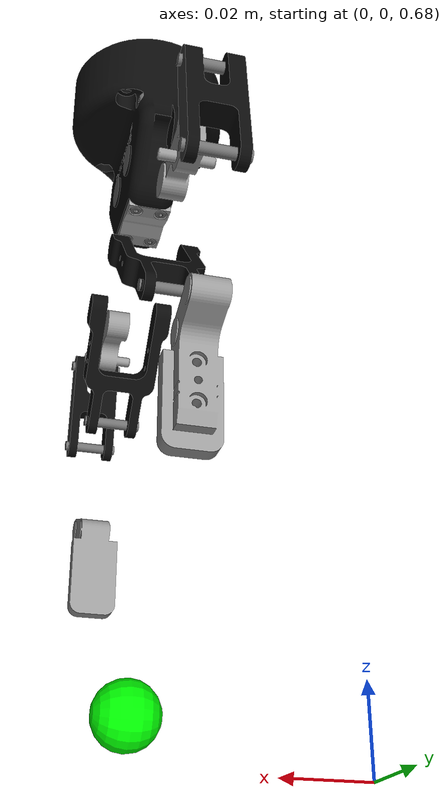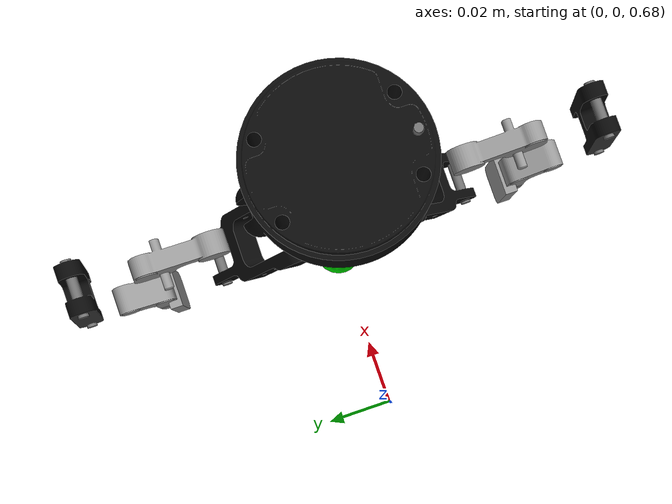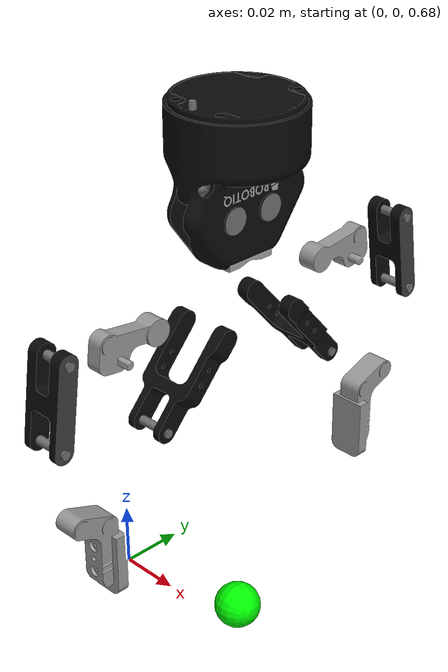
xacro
<?xml version="1.0" ?>
<robot name="robotiq_85_gripper" xmlns:xacro="http://ros.org/wiki/xacro">
    <xacro:include filename="$(find robotiq_85_description)/urdf/robotiq_85_gripper_macro.urdf.xacro" />

    <gazebo>
      <plugin filename="libgazebo_ros2_control.so" name="gazebo_ros2_control">
        <robot_param>robot_description</robot_param>
        <robot_name_space>robotiq_85</robot_name_space>
        <robot_param_node>robot_state_publisher</robot_param_node>
        <robot_sim_type>gazebo_ros2_control/GazeboSystem</robot_sim_type>
        <parameters>$(find robotiq_85_description)/config/joint_trajectory_controller.yaml</parameters>
      </plugin>
    </gazebo>

    <link name="world"/>
    <joint name="world_fixed" type="fixed">
        <origin xyz="0 0 0" rpy="0 0 0"/>
        <parent link="world"/>
        <child link="gripper_root_link"/>
    </joint>

    <link name="gripper_root_link">
        <!--              iyx = "0.000000" iyy = "0.000001" iyz = "0.000000" -->
    </link>

    <xacro:robotiq_85_gripper prefix="" parent="gripper_root_link" sim="true">
        <origin xyz="0.05 0 0.85" rpy="0 1.57 0"/>
    </xacro:robotiq_85_gripper>
</robot>

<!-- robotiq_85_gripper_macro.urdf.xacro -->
<robot name="robotiq_85_gripper" xmlns:xacro="http://ros.org/wiki/xacro">
	<xacro:include filename="$(find robotiq_85_description)/urdf/robotiq_85_gripper.transmission.xacro" />

	<xacro:macro name="robotiq_85_gripper" params="prefix parent *origin sim:=false">

		  <!-- ros2 control include -->
		  <xacro:include filename="$(find robotiq_85_description)/urdf/robotiq_85_gripper.ros2_control.xacro"/>
		  <!-- ros2 control instance -->
		  <xacro:robotiq_85_gripper_ros2_control name="gripper_controller"/>

		<joint name="${prefix}robotiq_85_base_joint" type="fixed">
			<parent link="${parent}"/>
			<child link="${prefix}robotiq_85_base_link"/>
			<xacro:insert_block name="origin"/>
		</joint>

		<link name="${prefix}robotiq_85_base_link">
		  <!-- Visual aid for grasping -->
		  <visual>
		    <origin xyz="0.16 0 0" rpy="0 0 0" />
		    <geometry>
		      <sphere radius="0.007"/>
		    </geometry>
		    <material name="">
		      <color rgba="0 1.0 0 1.0"/>
		    </material>
		  </visual>
		  <!-- Gripper body -->
		  <visual>
		    <geometry>
		      <mesh filename="file://$(find robotiq_85_description)/meshes/visual/robotiq_85_base_link.dae"/>
		    </geometry>
		  </visual>
		  <collision>
		    <geometry>
		      <mesh filename="file://$(find robotiq_85_description)/meshes/collision/robotiq_85_base_link.stl"/>
		        	</geometry>
		  </collision>
		  <inertial>
		    <mass value="0.636951" />
		    <origin xyz="0.0 0.0 0.0" />
		    <inertia ixx = "0.000380" ixy = "0.000000" ixz = "0.000000"
			     iyx = "0.000000" iyy = "0.001110" iyz = "0.000000"
			     izx = "0.000000" izy = "0.000000" izz = "0.001171" />
		  </inertial>
		</link>

		<joint name="${prefix}robotiq_85_left_knuckle_joint" type="revolute">
			<parent link="${prefix}robotiq_85_base_link"/>
			<child link="${prefix}robotiq_85_left_knuckle_link"/>
			<axis xyz="0 0 1"/>
			<origin rpy="${pi} 0.0 0.0" xyz="0.05490451627 0.03060114443 0.0"/>
			<limit lower="0.0" upper="0.804" velocity="2.0" effort="0.1"/>
                        <dynamics damping="0.01" friction="0"/>
		</joint>

		<gazebo reference="${prefix}robotiq_85_left_knuckle_link">
			<kp>1000000.0</kp>
			<kd>100.0</kd>
			<mu1>30.0</mu1>
			<mu2>30.0</mu2>
			<maxVel>1.0</maxVel>
			<minDepth>0.001</minDepth>
			<material>Gazebo/Grey</material>
		</gazebo>

		<joint name="${prefix}robotiq_85_right_knuckle_joint" type="continuous">
			<parent link="${prefix}robotiq_85_base_link"/>
			<child link="${prefix}robotiq_85_right_knuckle_link"/>
			<axis xyz="0 0 1"/>
			<origin rpy="0.0 0.0 0.0" xyz="0.05490451627 -0.03060114443 0.0"/>
			<limit lower="-3.14" upper="3.14" velocity="2.0" effort="0.1"/>
			<mimic joint="${prefix}robotiq_85_left_knuckle_joint"/>
                        <dynamics damping="0.01" friction="0."/>
		</joint>

		<gazebo reference="${prefix}robotiq_85_right_knuckle_link">
			<kp>1000000.0</kp>
			<kd>100.0</kd>
			<mu1>30.0</mu1>
			<mu2>30.0</mu2>
			<maxVel>1.0</maxVel>
			<minDepth>0.001</minDepth>
			<material>Gazebo/Grey</material>
		</gazebo>
		<!-- 	parent_joint="${prefix}robotiq_85_left_knuckle_joint" mimic_joint="${prefix}robotiq_85_right_knuckle_joint" -->

		<link name="${prefix}robotiq_85_left_knuckle_link">
		  <visual>
		    <geometry>
		      <mesh filename="file://$(find robotiq_85_description)/meshes/visual/robotiq_85_knuckle_link.dae"/>
		    </geometry>
		  </visual>
		  <collision>
		    <geometry>
		      <mesh filename="file://$(find robotiq_85_description)/meshes/collision/robotiq_85_knuckle_link.stl"/>
		    </geometry>
		  </collision>
		  <inertial>
		    <mass value="0.018491" />
		    <origin xyz="0.0 0.0 0.0" />
		    <inertia ixx = "0.000009" ixy = "-0.000001" ixz = "0.000000"
			     iyx = "-0.000001" iyy = "0.000001" iyz = "0.000000"
			     izx = "0.000000" izy = "0.000000" izz = "0.000010" />
		  </inertial>
		</link>

		<link name="${prefix}robotiq_85_right_knuckle_link">
		  <visual>
		    <geometry>
		      <mesh filename="file://$(find robotiq_85_description)/meshes/visual/robotiq_85_knuckle_link.dae"/>
		    </geometry>
		  </visual>
		  <collision>
		    <geometry>
		      <mesh filename="file://$(find robotiq_85_description)/meshes/collision/robotiq_85_knuckle_link.stl"/>
		    </geometry>
		  </collision>
		  <inertial>
		    <mass value="0.018491" />
		    <origin xyz="0.0 0.0 0.0" />
		    <inertia ixx = "0.000009" ixy = "-0.000001" ixz = "0.000000"
			     iyx = "-0.000001" iyy = "0.000001" iyz = "0.000000"
			     izx = "0.000000" izy = "0.000000" izz = "0.000010" />
		  </inertial>
		</link>

		<joint name="${prefix}robotiq_85_left_finger_joint" type="fixed">
		  <parent link="${prefix}robotiq_85_left_knuckle_link"/>
		  <child link="${prefix}robotiq_85_left_finger_link"/>
		  <origin xyz="-0.00408552455 -0.03148604435 0.0" rpy="0 0 0" />
		</joint>

		<joint name="${prefix}robotiq_85_right_finger_joint" type="fixed">
		  <parent link="${prefix}robotiq_85_right_knuckle_link"/>
		  <child link="${prefix}robotiq_85_right_finger_link"/>
		  <origin xyz="-0.00408552455 -0.03148604435 0.0" rpy="0 0 0" />
		</joint>

		<link name="${prefix}robotiq_85_left_finger_link">
		  <visual>
		    <geometry>
		      <mesh filename="file://$(find robotiq_85_description)/meshes/visual/robotiq_85_finger_link.dae"/>
		    </geometry>
		  </visual>
		  <collision>
		    <geometry>
		      <mesh filename="file://$(find robotiq_85_description)/meshes/collision/robotiq_85_finger_link.stl"/>
		    </geometry>
		  </collision>
		  <inertial>
		    <mass value="0.027309" />
		    <origin xyz="0.0 0.0 0.0" />
		    <inertia ixx = "0.000003" ixy = "-0.000002" ixz = "0.000000"
			     iyx = "-0.000002" iyy = "0.000021" iyz = "0.000000"
			     izx = "0.000000" izy = "0.000000" izz = "0.000020" />
		  </inertial>
		</link>

                <gazebo reference="${prefix}robotiq_85_left_finger_link">
                  <implicitSpringDamper>1</implicitSpringDamper>
                  <mu1>100000</mu1>
                  <mu2>100000</mu2>
                  <kp>100000000.0</kp>
                  <kd>1.0</kd>
                </gazebo>

		<link name="${prefix}robotiq_85_right_finger_link">
			<visual>
				<geometry>
					<mesh filename="file://$(find robotiq_85_description)/meshes/visual/robotiq_85_finger_link.dae"/>
				</geometry>
			</visual>
			<collision>
				<geometry>
					<mesh filename="file://$(find robotiq_85_description)/meshes/collision/robotiq_85_finger_link.stl"/>
				</geometry>
			</collision>
			<inertial>
				<mass value="0.027309" />
				<origin xyz="0.0 0.0 0.0" />
				<inertia ixx = "0.000003" ixy = "-0.000002" ixz = "0.000000"
					iyx = "-0.000002" iyy = "0.000021" iyz = "0.000000"
					izx = "0.000000" izy = "0.000000" izz = "0.000020" />
			</inertial>
		</link>

                <gazebo reference="${prefix}robotiq_85_right_finger_link">
                  <implicitSpringDamper>1</implicitSpringDamper>
                  <mu1>100000</mu1>
                  <mu2>100000</mu2>
                  <kp>100000000.0</kp>
                  <kd>1.0</kd>
                </gazebo>

		<joint name="${prefix}robotiq_85_left_inner_knuckle_joint" type="continuous">
			<parent link="${prefix}robotiq_85_base_link"/>
			<child link="${prefix}robotiq_85_left_inner_knuckle_link"/>
			<axis xyz="0 0 1"/>
			<origin xyz="0.06142 0.0127 0" rpy="${pi} 0.0 0.0" />
			<limit lower="-3.14" upper="3.14" velocity="100.0" effort="10.0"/>
			<mimic joint="${prefix}robotiq_85_left_knuckle_joint" offset="0"/>
		</joint>

		<!-- 	parent_joint="${prefix}robotiq_85_left_knuckle_joint" mimic_joint="${prefix}robotiq_85_left_inner_knuckle_joint" -->

		<joint name="${prefix}robotiq_85_right_inner_knuckle_joint" type="continuous">
			<parent link="${prefix}robotiq_85_base_link"/>
			<child link="${prefix}robotiq_85_right_inner_knuckle_link"/>
			<axis xyz="0 0 1"/>
			<origin xyz="0.06142 -0.0127 0" rpy="0 0 0"/>
			<limit lower="-3.14" upper="3.14" velocity="100.0" effort="10.0"/>
			<mimic joint="${prefix}robotiq_85_left_knuckle_joint" offset="0"/>
		</joint>

		<!-- 	parent_joint="${prefix}robotiq_85_left_knuckle_joint" mimic_joint="${prefix}robotiq_85_right_inner_knuckle_joint" -->

		<link name="${prefix}robotiq_85_left_inner_knuckle_link">
			<visual>
				<geometry>
					<mesh filename="file://$(find robotiq_85_description)/meshes/visual/robotiq_85_inner_knuckle_link.dae"/>
				</geometry>
			</visual>
			<collision>
				<geometry>
					<mesh filename="file://$(find robotiq_85_description)/meshes/collision/robotiq_85_inner_knuckle_link.stl"/>
				</geometry>
			</collision>
			<inertial>
				<mass value="0.029951" />
				<origin xyz="0.0 0.0 0.0" />
				<inertia ixx = "0.000039" ixy = "0.000000" ixz = "0.000000"
					iyx = "0.000000" iyy = "0.000005" iyz = "0.000000"
					izx = "0.000000" izy = "0.000000" izz = "0.000035" />
			</inertial>
		</link>
		<link name="${prefix}robotiq_85_right_inner_knuckle_link">
			<visual>
				<geometry>
					<mesh filename="file://$(find robotiq_85_description)/meshes/visual/robotiq_85_inner_knuckle_link.dae"/>
				</geometry>
			</visual>
			<collision>
				<geometry>
					<mesh filename="file://$(find robotiq_85_description)/meshes/collision/robotiq_85_inner_knuckle_link.stl"/>
				</geometry>
			</collision>
			<inertial>
				<mass value="0.029951" />
				<origin xyz="0.0 0.0 0.0" />
				<inertia ixx = "0.000039" ixy = "0.000000" ixz = "0.000000"
					iyx = "0.000000" iyy = "0.000005" iyz = "0.000000"
					izx = "0.000000" izy = "0.000000" izz = "0.000035" />
			</inertial>
		</link>

		<joint name="${prefix}robotiq_85_left_finger_tip_joint" type="continuous">
			<parent link="${prefix}robotiq_85_left_inner_knuckle_link"/>
			<child link="${prefix}robotiq_85_left_finger_tip_link"/>
			<axis xyz="0 0 1"/>
			<origin xyz="0.04303959807 -0.03759940821 0.0" rpy="0.0 0.0 0.0"/>
			<limit lower="-3.14" upper="3.14" velocity="100.0" effort="10.0"/>
			<mimic joint="${prefix}robotiq_85_left_knuckle_joint" multiplier="-1"/>
		</joint>

		<!-- 	parent_joint="${prefix}robotiq_85_left_knuckle_joint" mimic_joint="${prefix}robotiq_85_left_finger_tip_joint" -->

		<joint name="${prefix}robotiq_85_right_finger_tip_joint" type="continuous">
			<parent link="${prefix}robotiq_85_right_inner_knuckle_link"/>
			<child link="${prefix}robotiq_85_right_finger_tip_link"/>
			<axis xyz="0 0 1"/>
			<origin rpy="0.0 0.0 0.0" xyz="0.04303959807 -0.03759940821  0.0"/>
			<limit lower="-3.14" upper="3.14" velocity="100.0" effort="10.0"/>
			<mimic joint="${prefix}robotiq_85_left_knuckle_joint" multiplier="-1"/>
		</joint>

		<!-- 	parent_joint="${prefix}robotiq_85_left_knuckle_joint" mimic_joint="${prefix}robotiq_85_right_finger_tip_joint" -->

		<link name="${prefix}robotiq_85_left_finger_tip_link">
			<visual>
				<geometry>
					<mesh filename="file://$(find robotiq_85_description)/meshes/visual/robotiq_85_finger_tip_link.dae"/>
				</geometry>
			</visual>
			<collision>
				<geometry>
					<mesh filename="file://$(find robotiq_85_description)/meshes/collision/robotiq_85_finger_tip_link.stl"/>
				</geometry>
			</collision>
			<inertial>
				<mass value="0.019555" />
				<origin xyz="0.0 0.0 0.0" />
				<inertia ixx = "0.000002" ixy = "0.000000" ixz = "0.000000"
					iyx = "0.000000" iyy = "0.000005" iyz = "0.000000"
					izx = "0.000000" izy = "0.000000" izz = "0.000006" />
			</inertial>
		</link>

		<gazebo reference="${prefix}robotiq_85_left_finger_tip_link">
			<kp>1000000.0</kp>
			<kd>100.0</kd>
			<mu1>30.0</mu1>
			<mu2>30.0</mu2>
			<maxVel>1.0</maxVel>
			<minDepth>0.001</minDepth>
			<material>Gazebo/Grey</material>
		</gazebo>
		<link name="${prefix}robotiq_85_right_finger_tip_link">
			<visual>
				<geometry>
					<mesh filename="file://$(find robotiq_85_description)/meshes/visual/robotiq_85_finger_tip_link.dae"/>
				</geometry>
			</visual>
			<collision>
				<geometry>
					<mesh filename="file://$(find robotiq_85_description)/meshes/collision/robotiq_85_finger_tip_link.stl"/>
				</geometry>
			</collision>
			<inertial>
				<mass value="0.019555" />
				<origin xyz="0.0 0.0 0.0" />
				<inertia ixx = "0.000002" ixy = "0.000000" ixz = "0.000000"
					iyx = "0.000000" iyy = "0.000005" iyz = "0.000000"
					izx = "0.000000" izy = "0.000000" izz = "0.000006" />
			</inertial>
		</link>

		<gazebo reference="${prefix}robotiq_85_right_finger_tip_link">
			<kp>1000000.0</kp>
			<kd>100.0</kd>
			<mu1>30.0</mu1>
			<mu2>30.0</mu2>
			<maxVel>1.0</maxVel>
			<minDepth>0.001</minDepth>
			<material>Gazebo/Grey</material>
		</gazebo>
		<xacro:robotiq_85_gripper_transmission prefix="${prefix}" />
	</xacro:macro>
</robot>
